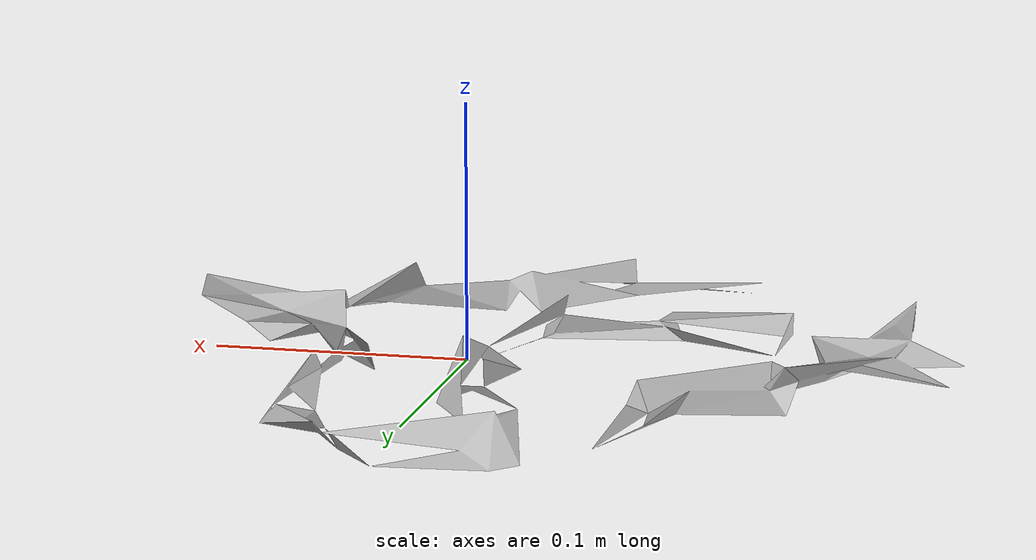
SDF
<?xml version='1.0'?>
<sdf version="1.4">
  <model name="059_chain">
    <static>false</static>
    <link name="link">
      <inertial>
        <pose>-0.032663324016315894 0.014719243183533175 0.010849180717544087 0.9932961677295202 -1.5570547845390008 -3.10886869605754</pose>
        <mass>0.12145138905942711</mass>
        <inertia>
          <ixx>0.001106759767553599</ixx>
          <ixy>5.669206344187815e-21</ixy>
          <ixz>1.0125180550354881e-21</ixz>
          <iyy>0.0006260258783400269</iyy>
          <iyz>-1.1728149624336182e-19</iyz>
          <izz>0.0004901789251077868</izz>
        </inertia>
      </inertial>
      <collision name="collision">
        <geometry>
          <mesh>
            <!-- Use a downsampled mesh for collisions -->
            <uri>model:///059_chain/059_chain_250_collision.stl</uri>
	        </mesh>
        </geometry>
        <surface>
      </surface>
      </collision>
      <visual name="visual">
        <geometry>
          <mesh>
            <uri>model:///059_chain/textured.obj</uri>
	        </mesh>
        </geometry>
        <material>
          <script>
            <uri>model:///059_chain/059_chain.material</uri>
            <name>059_chain</name>
          </script>
        </material>
      </visual>
    </link>
  </model>
</sdf>
